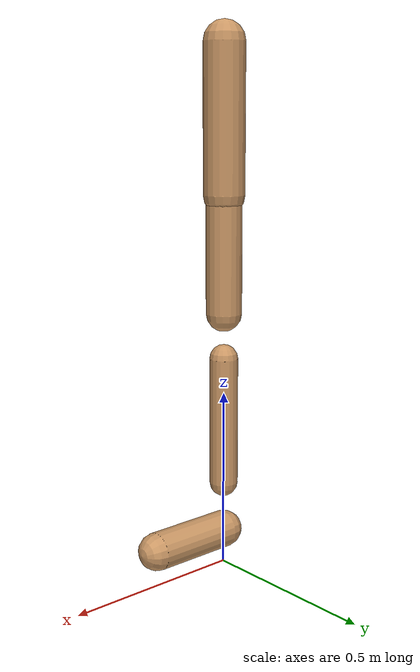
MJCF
<mujoco model="walker2d">
  <compiler angle="degree" coordinate="global" inertiafromgeom="true" />
  <default>
    <joint armature="0.01" damping=".1" limited="true" />
    <geom conaffinity="0" condim="3" contype="1" density="1000" friction="0.8 .1 .1" rgba="0.8 0.6 .4 1" />
  </default>
  <option integrator="RK4" timestep="0.002" />
  <worldbody>

    <body name="torso" pos="0 0 -0.26719857822455023">
      <joint armature="0" axis="1 0 0" damping="0" limited="false" name="ignorex" pos="0 0 0" stiffness="0" type="slide" />
      <joint armature="0" axis="0 0 1" damping="0" limited="false" name="ignorez" pos="0 0 0" ref="1.25" stiffness="0" type="slide" />
      <joint armature="0" axis="0 1 0" damping="0" limited="false" name="ignorey" pos="0 0 0" stiffness="0" type="hinge" />
      <geom fromto="0 0 1.45 0 0 1.05" name="torso_geom" size="0.056651189117738865" type="capsule" />
      <body name="thigh">
        <joint axis="0 -1 0" name="thigh_joint" pos="0 0 1.05" range="-150 0" type="hinge" />
        <geom fromto="0.0 0.0 1.05 0.0 0.0 0.72656774758005" name="thigh_geom" size="0.04940604996034709" type="capsule" />
        <body name="leg" pos="0.0 0.0 0.12656774758005007">
          <joint axis="0 -1 0" name="leg_joint" pos="0 0 0.6" range="-150 0" type="hinge" />
          <geom fromto="0.0 0.0 0.6 0.0 0.0 0.2406308306445001" name="leg_geom" size="0.039524839968277665" type="capsule" />
          <body name="foot" pos="0.0 0.0 0.1406308306445001">
            <joint axis="0 -1 0" name="foot_joint" pos="0 0 0.1" range="-45 45" type="hinge" />
            <geom fromto="-0.0 0.0 0.1 0.24125052295251248 0.0 0.1" name="foot_geom" size="0.05162307816066515" type="capsule" />
          </body>
        </body>
      </body>

      <body name="thigh_left">
        <joint axis="0 -1 0" name="thigh_left_joint" pos="0 0 1.05" range="-150 0" type="hinge" />
        <geom fromto="0.0 0.0 1.05 0.0 0.0 0.72656774758005" name="thigh_left_geom" rgba=".7 .3 .6 1" size="0.04940604996034709" type="capsule" />
        <body name="leg_left" pos="0.0 0.0 0.12656774758005007">
          <joint axis="0 -1 0" name="leg_left_joint" pos="0 0 0.6" range="-150 0" type="hinge" />
          <geom fromto="0.0 0.0 0.6 0.0 0.0 0.2406308306445001" name="leg_left_geom" rgba=".7 .3 .6 1" size="0.039524839968277665" type="capsule" />
          <body name="foot_left" pos="0.0 0.0 0.1406308306445001">
            <joint axis="0 -1 0" name="foot_left_joint" pos="0 0 0.1" range="-45 45" type="hinge" />
            <geom fromto="-0.0 0.0 0.1 0.24125052295251248 0.0 0.1" name="foot_left_geom" rgba=".7 .3 .6 1" size="0.05162307816066515" type="capsule" />
          </body>
        </body>
      </body>
    </body>
  </worldbody>
  <actuator>

    <motor ctrllimited="true" ctrlrange="-1.0 1.0" gear="100" joint="thigh_joint" />
    <motor ctrllimited="true" ctrlrange="-1.0 1.0" gear="100" joint="leg_joint" />
    <motor ctrllimited="true" ctrlrange="-1.0 1.0" gear="100" joint="foot_joint" />
    <motor ctrllimited="true" ctrlrange="-1.0 1.0" gear="100" joint="thigh_left_joint" />
    <motor ctrllimited="true" ctrlrange="-1.0 1.0" gear="100" joint="leg_left_joint" />
    <motor ctrllimited="true" ctrlrange="-1.0 1.0" gear="100" joint="foot_left_joint" />

  </actuator>
</mujoco>
